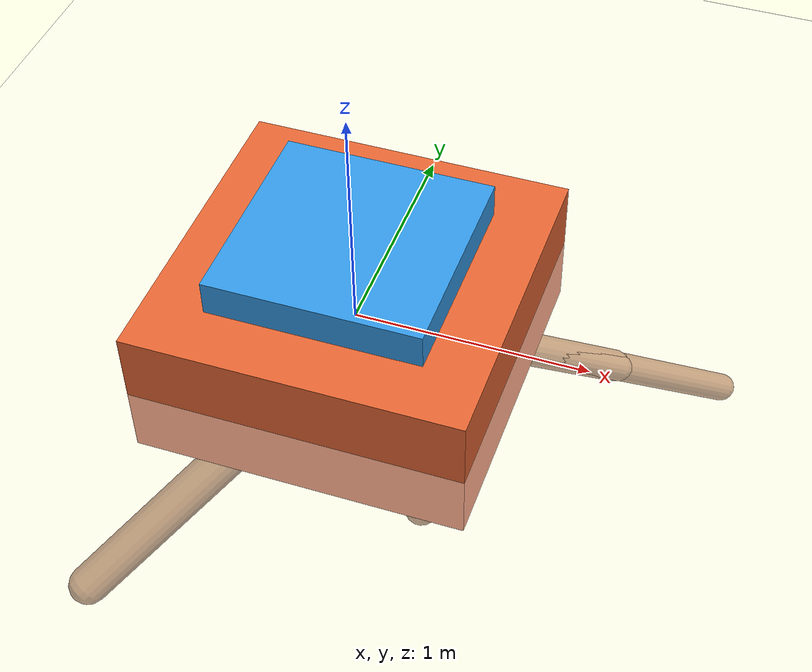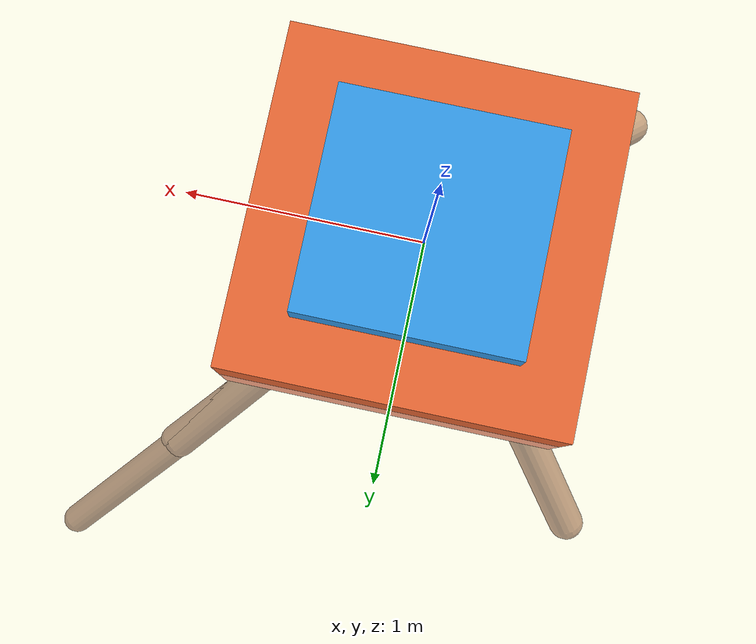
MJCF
<mujoco model="dex-gripper">
  <asset>
    <texture name="skybox" type="skybox" builtin="gradient" rgb1=".2 .3 .4" rgb2="0 0 0" width="800" height="800" mark="random" markrgb="1 1 1"/>
    <texture name="grid" type="2d" builtin="checker" rgb1=".2 .1 .2" rgb2=".3 .2 .3" width="300" height="300" mark="edge" markrgb=".3 .2 .3"/>
    <material name="grid" texture="grid" texrepeat="1 1" texuniform="true" reflectance=".2"/>
    <material name="self" rgba=".7 .5 .3 1"/>
  </asset>
  <visual>
    <headlight ambient=".4 .4 .4" diffuse=".8 .8 .8" specular="0.1 0.1 0.1"/>
    <map znear=".001"/>
    <quality shadowsize="16384"/>
  </visual>
  <compiler angle="degree" coordinate="global" inertiafromgeom="true"/>
  <option integrator="RK4" timestep="0.01"/>
  <default>
    <joint armature="1" damping="1" limited="true"/>
    <geom conaffinity="0" condim="3" density="5.0" friction="1 0.5 0.5" margin="0.01" rgba=".7 .5 .3 1"/>
  </default>
  <worldbody>
    <light cutoff="100" diffuse="1 1 1" dir="0.3 0 -1.3" directional="true" exponent="1" pos="-30 0 130" specular=".1 .1 .1"/>
    <geom conaffinity="1" condim="3" name="floor" pos="0 0 0" rgba="1 1 1 1" size="200 200 .125" type="plane" material="grid"/>
    <body name="0" pos="0 0 0" gravcomp="1">
      <camera name="track" mode="fixed" pos="0 10 5" quat="0 0 0.547 0.892"/>
      <geom pos="0 0 0" size="0.27554 0.213979 0.191437" type="ellipsoid"/>
      <joint name="root_x" type="slide" axis="1 0 0" pos="0 0 0" limited="false" armature="0" damping="0"/>
      <joint name="root_y" type="slide" axis="0 1 0" pos="0 0 0" limited="false" armature="0" damping="0"/>
      <joint name="root_z" type="slide" axis="0 0 1" pos="0 0 0" limited="false" armature="0" damping="0"/>
      <body name="1" pos="0 0 0" gravcomp="1">
        <joint axis="-0.707107 0.707107 0" name="1_joint" pos="0 0 0" range="-30 30" type="hinge" damping="0"/>
        <geom fromto="-0.045418 -0.048482 0.049255 0.461048 0.492158 -0.5" size="0.076243 0.076243 0.076243" type="capsule"/>
        <body name="11" pos="0.461048 0.492158 -0.5" gravcomp="1">
          <joint axis="-0.707107 0.707107 0" name="11_joint" pos="0.461048 0.492158 -0.5" range="-30 30" type="hinge" damping="0"/>
          <geom fromto="0.413061 0.441583 -0.449137 0.932776 0.989334 -1" size="0.077227 0.077227 0.077227" type="capsule"/>
          <body name="111" pos="0.932776 0.989334 -1" gravcomp="1">
            <joint axis="-0.707107 0.707107 0" name="111_joint" pos="0.932776 0.989334 -1" range="-30 30" type="hinge" damping="0"/>
            <geom fromto="0.874236 0.930737 -0.940486 1.424603 1.481641 -1.5" size="0.069728 0.069728 0.069728" type="capsule"/>
          </body>
        </body>
        <body name="21" pos="0.461048 0.492158 -0.5" gravcomp="1">
          <joint axis="-0.707107 0.707107 0" name="21_joint" pos="0.461048 0.492158 -0.5" range="-30 30" type="hinge" damping="0"/>
          <geom fromto="0.384916 0.416793 -0.423331 0.957546 0.983655 -1" size="0.066168 0.066168 0.066168" type="capsule"/>
        </body>
      </body>
      <body name="2" pos="0 0 0" gravcomp="1">
        <joint axis="-0.707107 -0.707107 0" name="2_joint" pos="0 0 0" range="-30 30" type="hinge" damping="0"/>
        <geom fromto="0.043158 -0.041399 0.043228 -0.499191 0.478842 -0.5" size="0.062138 0.062138 0.062138" type="capsule"/>
        <body name="12" pos="-0.499191 0.478842 -0.5" gravcomp="1">
          <joint axis="-0.707107 -0.707107 0" name="12_joint" pos="-0.499191 0.478842 -0.5" range="-30 30" type="hinge" damping="0"/>
          <geom fromto="-0.447015 0.421011 -0.442148 -0.950131 0.978665 -1" size="0.080341 0.080341 0.080341" type="capsule"/>
        </body>
      </body>
      <body name="3" pos="0 0 0" gravcomp="1">
        <joint axis="0.707107 -0.707107 0" name="3_joint" pos="0 0 0" range="-30 30" type="hinge" damping="0"/>
        <geom fromto="0.037051 0.045718 0.045857 -0.403983 -0.498489 -0.5" size="0.070764 0.070764 0.070764" type="capsule"/>
        <body name="13" pos="-0.403983 -0.498489 -0.5" gravcomp="1">
          <joint axis="0.707107 -0.707107 0" name="13_joint" pos="-0.403983 -0.498489 -0.5" range="-30 30" type="hinge" damping="0"/>
          <geom fromto="-0.346366 -0.440686 -0.441635 -0.897582 -0.99367 -1" size="0.086753 0.086753 0.086753" type="capsule"/>
        </body>
        <body name="23" pos="-0.403983 -0.498489 -0.5" gravcomp="1">
          <joint axis="0.707107 -0.707107 0" name="23_joint" pos="-0.403983 -0.498489 -0.5" range="-30 30" type="hinge" damping="0"/>
          <geom fromto="-0.33866 -0.432551 -0.433692 -0.896559 -0.995691 -1" size="0.071415 0.071415 0.071415" type="capsule"/>
        </body>
      </body>
      <body name="4" pos="0 0 0" gravcomp="1">
        <joint axis="0.707107 0.707107 0" name="4_joint" pos="0 0 0" range="-30 30" type="hinge" damping="0"/>
        <geom fromto="-0.065512 0.071463 0.071508 0.458072 -0.499684 -0.5" size="0.072192 0.072192 0.072192" type="capsule"/>
      </body>
    </body>
    <body name="box_1" pos="0 0 0">
      <freejoint name="box_1_joint"/>
      <geom name="box_1" type="box" size="0.45 0.45 0.45" rgba="0.2 0.6 0.9 1.0" contype="1" conaffinity="1" density="10" friction="2.5 0.1 0.05"/>
    </body>
    <body name="box_2" pos="3.0 0 0.425">
      <freejoint name="box_2_joint"/>
      <geom name="box_2" type="box" size="0.7 0.7 0.3" rgba="0.9 0.4 0.2 1.0" contype="1" conaffinity="1" density="10" friction="2.5 0.1 0.05"/>
    </body>
  </worldbody>
  <actuator>
    <motor name="root_x_motor" joint="root_x" gear="50" ctrllimited="true" ctrlrange="-1 1"/>
    <motor name="root_y_motor" joint="root_y" gear="50" ctrllimited="true" ctrlrange="-1 1"/>
    <motor name="root_z_motor" joint="root_z" gear="50" ctrllimited="true" ctrlrange="-1 1"/>
    <motor ctrllimited="true" ctrlrange="-1.0 1.0" joint="1_joint" gear="20.25229" name="1_joint"/>
    <motor ctrllimited="true" ctrlrange="-1.0 1.0" joint="2_joint" gear="33.950748" name="2_joint"/>
    <motor ctrllimited="true" ctrlrange="-1.0 1.0" joint="3_joint" gear="24.762523" name="3_joint"/>
    <motor ctrllimited="true" ctrlrange="-1.0 1.0" joint="4_joint" gear="79.648224" name="4_joint"/>
    <motor ctrllimited="true" ctrlrange="-1.0 1.0" joint="11_joint" gear="29.068653" name="11_joint"/>
    <motor ctrllimited="true" ctrlrange="-1.0 1.0" joint="12_joint" gear="50.114414" name="12_joint"/>
    <motor ctrllimited="true" ctrlrange="-1.0 1.0" joint="13_joint" gear="31.212724" name="13_joint"/>
    <motor ctrllimited="true" ctrlrange="-1.0 1.0" joint="21_joint" gear="63.784104" name="21_joint"/>
    <motor ctrllimited="true" ctrlrange="-1.0 1.0" joint="23_joint" gear="35.85089" name="23_joint"/>
    <motor ctrllimited="true" ctrlrange="-1.0 1.0" joint="111_joint" gear="48.610341" name="111_joint"/>
  </actuator>
</mujoco>
